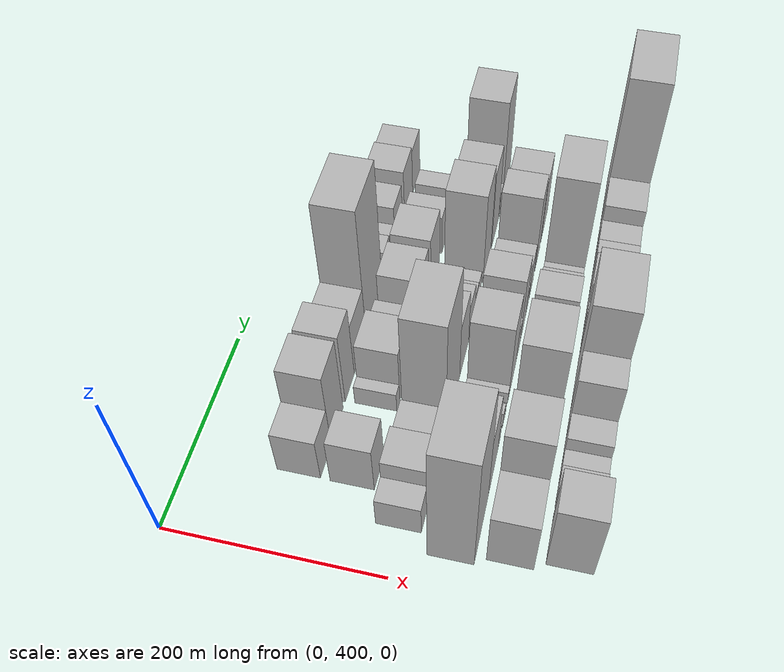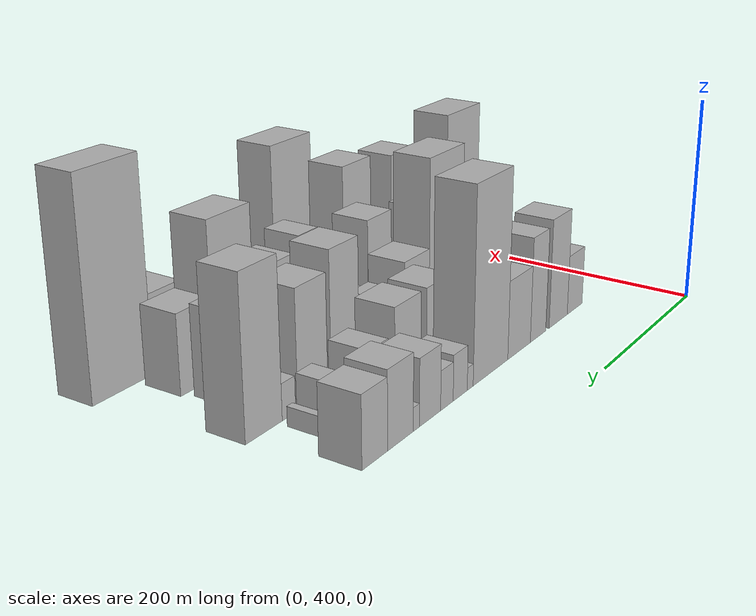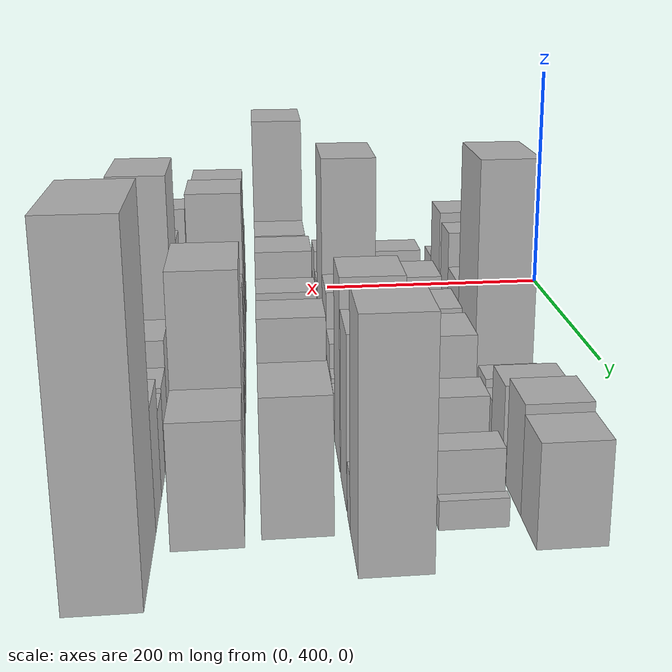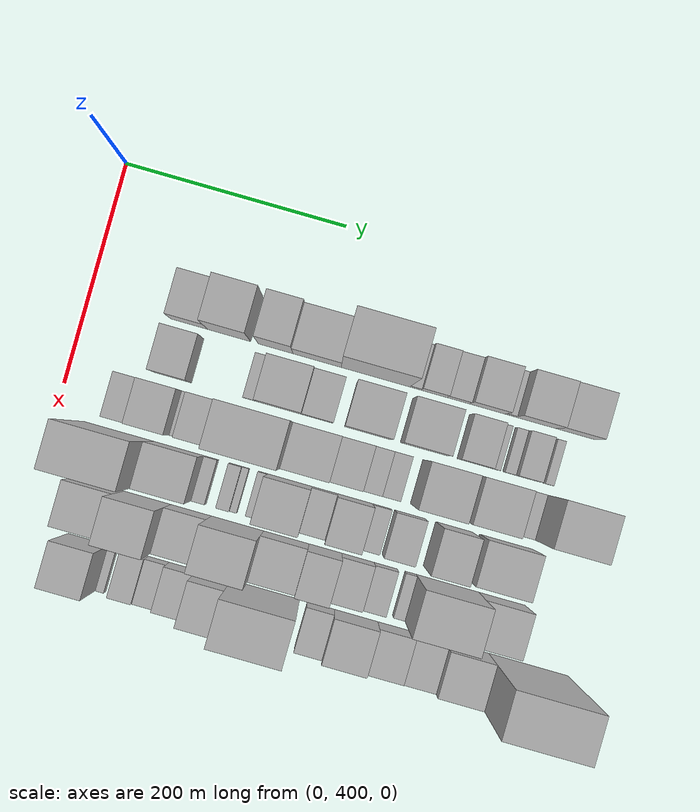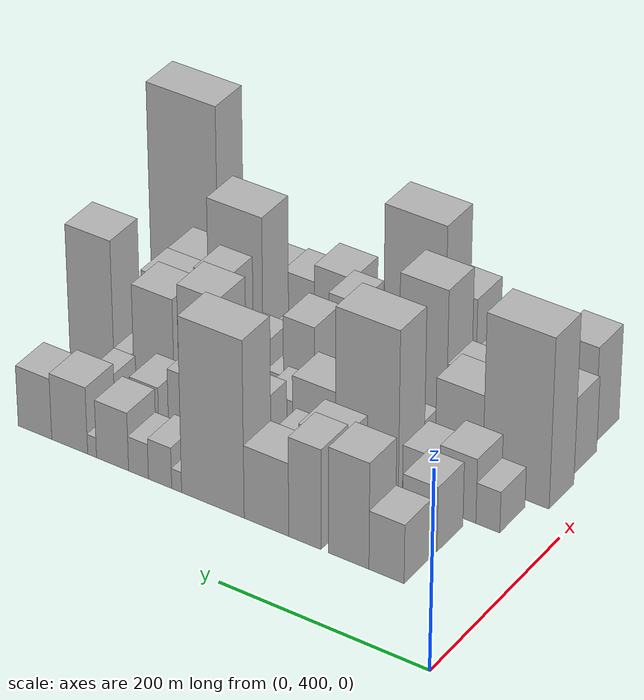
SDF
<sdf version="1.6">
 <world name="default">
  <model name="building_43">
   <static>1</static>
   <pose>100.0000 491.4651 0 0.000000 0.000000 0.000000</pose>
   <link name="link">
    <pose>0 0 30.00 0 0 0</pose>
    <collision name="collision"><geometry><box><size>40.0000 33.5811 60.0000</size></box></geometry></collision>
    <visual name="visual">
     <cast_shadows>0</cast_shadows>
     <geometry><box><size>40.0000 33.5811 60.0000</size></box></geometry>
     <material>
      <script>
       <uri>model://HANNAS_wall/materials/scripts</uri>
       <uri>model://HANNAS_wall/materials/textures</uri>
       <name>vrc/HANNAS_wall</name>
      </script>
     </material>
    </visual>
   </link>
  </model>
  <model name="building_44">
   <static>1</static>
   <pose>100.0000 527.8401 0 0.000000 0.000000 0.000000</pose>
   <link name="link">
    <pose>0 0 54.00 0 0 0</pose>
    <collision name="collision"><geometry><box><size>40.0000 39.1689 108.0000</size></box></geometry></collision>
    <visual name="visual">
     <cast_shadows>0</cast_shadows>
     <geometry><box><size>40.0000 39.1689 108.0000</size></box></geometry>
     <material>
      <script>
       <uri>model://HANNAS_wall/materials/scripts</uri>
       <uri>model://HANNAS_wall/materials/textures</uri>
       <name>vrc/HANNAS_wall</name>
      </script>
     </material>
    </visual>
   </link>
  </model>
  <model name="building_45">
   <static>1</static>
   <pose>100.0000 570.1736 0 0.000000 0.000000 0.000000</pose>
   <link name="link">
    <pose>0 0 51.00 0 0 0</pose>
    <collision name="collision"><geometry><box><size>40.0000 31.4981 102.0000</size></box></geometry></collision>
    <visual name="visual">
     <cast_shadows>0</cast_shadows>
     <geometry><box><size>40.0000 31.4981 102.0000</size></box></geometry>
     <material>
      <script>
       <uri>model://HANNAS_wall/materials/scripts</uri>
       <uri>model://HANNAS_wall/materials/textures</uri>
       <name>vrc/HANNAS_wall</name>
      </script>
     </material>
    </visual>
   </link>
  </model>
  <model name="building_46">
   <static>1</static>
   <pose>100.0000 607.7697 0 0.000000 0.000000 0.000000</pose>
   <link name="link">
    <pose>0 0 37.50 0 0 0</pose>
    <collision name="collision"><geometry><box><size>40.0000 43.6942 75.0000</size></box></geometry></collision>
    <visual name="visual">
     <cast_shadows>0</cast_shadows>
     <geometry><box><size>40.0000 43.6942 75.0000</size></box></geometry>
     <material>
      <script>
       <uri>model://HANNAS_wall/materials/scripts</uri>
       <uri>model://HANNAS_wall/materials/textures</uri>
       <name>vrc/HANNAS_wall</name>
      </script>
     </material>
    </visual>
   </link>
  </model>
  <model name="building_47">
   <static>1</static>
   <pose>100.0000 660.7658 0 0.000000 0.000000 0.000000</pose>
   <link name="link">
    <pose>0 0 90.00 0 0 0</pose>
    <collision name="collision"><geometry><box><size>40.0000 62.2980 180.0000</size></box></geometry></collision>
    <visual name="visual">
     <cast_shadows>0</cast_shadows>
     <geometry><box><size>40.0000 62.2980 180.0000</size></box></geometry>
     <material>
      <script>
       <uri>model://HANNAS_wall/materials/scripts</uri>
       <uri>model://HANNAS_wall/materials/textures</uri>
       <name>vrc/HANNAS_wall</name>
      </script>
     </material>
    </visual>
   </link>
  </model>
  <model name="building_48">
   <static>1</static>
   <pose>100.0000 696.9448 0 0.000000 0.000000 0.000000</pose>
   <link name="link">
    <pose>0 0 10.50 0 0 0</pose>
    <collision name="collision"><geometry><box><size>40.0000 10.0598 21.0000</size></box></geometry></collision>
    <visual name="visual">
     <cast_shadows>0</cast_shadows>
     <geometry><box><size>40.0000 10.0598 21.0000</size></box></geometry>
     <material>
      <script>
       <uri>model://HANNAS_wall/materials/scripts</uri>
       <uri>model://HANNAS_wall/materials/textures</uri>
       <name>vrc/HANNAS_wall</name>
      </script>
     </material>
    </visual>
   </link>
  </model>
  <model name="building_49">
   <static>1</static>
   <pose>100.0000 713.6967 0 0.000000 0.000000 0.000000</pose>
   <link name="link">
    <pose>0 0 21.00 0 0 0</pose>
    <collision name="collision"><geometry><box><size>40.0000 23.4441 42.0000</size></box></geometry></collision>
    <visual name="visual">
     <cast_shadows>0</cast_shadows>
     <geometry><box><size>40.0000 23.4441 42.0000</size></box></geometry>
     <material>
      <script>
       <uri>model://HANNAS_wall/materials/scripts</uri>
       <uri>model://HANNAS_wall/materials/textures</uri>
       <name>vrc/HANNAS_wall</name>
      </script>
     </material>
    </visual>
   </link>
  </model>
  <model name="building_50">
   <static>1</static>
   <pose>100.0000 735.4919 0 0.000000 0.000000 0.000000</pose>
   <link name="link">
    <pose>0 0 18.00 0 0 0</pose>
    <collision name="collision"><geometry><box><size>40.0000 20.1462 36.0000</size></box></geometry></collision>
    <visual name="visual">
     <cast_shadows>0</cast_shadows>
     <geometry><box><size>40.0000 20.1462 36.0000</size></box></geometry>
     <material>
      <script>
       <uri>model://HANNAS_wall/materials/scripts</uri>
       <uri>model://HANNAS_wall/materials/textures</uri>
       <name>vrc/HANNAS_wall</name>
      </script>
     </material>
    </visual>
   </link>
  </model>
  <model name="building_51">
   <static>1</static>
   <pose>100.0000 761.9363 0 0.000000 0.000000 0.000000</pose>
   <link name="link">
    <pose>0 0 30.00 0 0 0</pose>
    <collision name="collision"><geometry><box><size>40.0000 32.7426 60.0000</size></box></geometry></collision>
    <visual name="visual">
     <cast_shadows>0</cast_shadows>
     <geometry><box><size>40.0000 32.7426 60.0000</size></box></geometry>
     <material>
      <script>
       <uri>model://HANNAS_wall/materials/scripts</uri>
       <uri>model://HANNAS_wall/materials/textures</uri>
       <name>vrc/HANNAS_wall</name>
      </script>
     </material>
    </visual>
   </link>
  </model>
  <model name="building_52">
   <static>1</static>
   <pose>100.0000 782.8696 0 0.000000 0.000000 0.000000</pose>
   <link name="link">
    <pose>0 0 10.50 0 0 0</pose>
    <collision name="collision"><geometry><box><size>40.0000 9.1240 21.0000</size></box></geometry></collision>
    <visual name="visual">
     <cast_shadows>0</cast_shadows>
     <geometry><box><size>40.0000 9.1240 21.0000</size></box></geometry>
     <material>
      <script>
       <uri>model://HANNAS_wall/materials/scripts</uri>
       <uri>model://HANNAS_wall/materials/textures</uri>
       <name>vrc/HANNAS_wall</name>
      </script>
     </material>
    </visual>
   </link>
  </model>
  <model name="building_53">
   <static>1</static>
   <pose>100.0000 805.9386 0 0.000000 0.000000 0.000000</pose>
   <link name="link">
    <pose>0 0 34.50 0 0 0</pose>
    <collision name="collision"><geometry><box><size>40.0000 37.0140 69.0000</size></box></geometry></collision>
    <visual name="visual">
     <cast_shadows>0</cast_shadows>
     <geometry><box><size>40.0000 37.0140 69.0000</size></box></geometry>
     <material>
      <script>
       <uri>model://HANNAS_wall/materials/scripts</uri>
       <uri>model://HANNAS_wall/materials/textures</uri>
       <name>vrc/HANNAS_wall</name>
      </script>
     </material>
    </visual>
   </link>
  </model>
  <model name="building_54">
   <static>1</static>
   <pose>100.0000 841.8840 0 0.000000 0.000000 0.000000</pose>
   <link name="link">
    <pose>0 0 31.50 0 0 0</pose>
    <collision name="collision"><geometry><box><size>40.0000 34.8770 63.0000</size></box></geometry></collision>
    <visual name="visual">
     <cast_shadows>0</cast_shadows>
     <geometry><box><size>40.0000 34.8770 63.0000</size></box></geometry>
     <material>
      <script>
       <uri>model://HANNAS_wall/materials/scripts</uri>
       <uri>model://HANNAS_wall/materials/textures</uri>
       <name>vrc/HANNAS_wall</name>
      </script>
     </material>
    </visual>
   </link>
  </model>
  <model name="building_86">
   <static>1</static>
   <pose>149.0000 490.7361 0 0.000000 0.000000 0.000000</pose>
   <link name="link">
    <pose>0 0 33.00 0 0 0</pose>
    <collision name="collision"><geometry><box><size>40.0000 33.4193 66.0000</size></box></geometry></collision>
    <visual name="visual">
     <cast_shadows>0</cast_shadows>
     <geometry><box><size>40.0000 33.4193 66.0000</size></box></geometry>
     <material>
      <script>
       <uri>model://HANNAS_wall/materials/scripts</uri>
       <uri>model://HANNAS_wall/materials/textures</uri>
       <name>vrc/HANNAS_wall</name>
      </script>
     </material>
    </visual>
   </link>
  </model>
  <model name="building_87">
   <static>1</static>
   <pose>149.0000 561.1729 0 0.000000 0.000000 0.000000</pose>
   <link name="link">
    <pose>0 0 13.50 0 0 0</pose>
    <collision name="collision"><geometry><box><size>40.0000 11.8181 27.0000</size></box></geometry></collision>
    <visual name="visual">
     <cast_shadows>0</cast_shadows>
     <geometry><box><size>40.0000 11.8181 27.0000</size></box></geometry>
     <material>
      <script>
       <uri>model://HANNAS_wall/materials/scripts</uri>
       <uri>model://HANNAS_wall/materials/textures</uri>
       <name>vrc/HANNAS_wall</name>
      </script>
     </material>
    </visual>
   </link>
  </model>
  <model name="building_88">
   <static>1</static>
   <pose>149.0000 587.7290 0 0.000000 0.000000 0.000000</pose>
   <link name="link">
    <pose>0 0 37.50 0 0 0</pose>
    <collision name="collision"><geometry><box><size>40.0000 41.2941 75.0000</size></box></geometry></collision>
    <visual name="visual">
     <cast_shadows>0</cast_shadows>
     <geometry><box><size>40.0000 41.2941 75.0000</size></box></geometry>
     <material>
      <script>
       <uri>model://HANNAS_wall/materials/scripts</uri>
       <uri>model://HANNAS_wall/materials/textures</uri>
       <name>vrc/HANNAS_wall</name>
      </script>
     </material>
    </visual>
   </link>
  </model>
  <model name="building_89">
   <static>1</static>
   <pose>149.0000 622.4122 0 0.000000 0.000000 0.000000</pose>
   <link name="link">
    <pose>0 0 27.00 0 0 0</pose>
    <collision name="collision"><geometry><box><size>40.0000 28.0723 54.0000</size></box></geometry></collision>
    <visual name="visual">
     <cast_shadows>0</cast_shadows>
     <geometry><box><size>40.0000 28.0723 54.0000</size></box></geometry>
     <material>
      <script>
       <uri>model://HANNAS_wall/materials/scripts</uri>
       <uri>model://HANNAS_wall/materials/textures</uri>
       <name>vrc/HANNAS_wall</name>
      </script>
     </material>
    </visual>
   </link>
  </model>
  <model name="building_90">
   <static>1</static>
   <pose>149.0000 667.3184 0 0.000000 0.000000 0.000000</pose>
   <link name="link">
    <pose>0 0 39.00 0 0 0</pose>
    <collision name="collision"><geometry><box><size>40.0000 41.7401 78.0000</size></box></geometry></collision>
    <visual name="visual">
     <cast_shadows>0</cast_shadows>
     <geometry><box><size>40.0000 41.7401 78.0000</size></box></geometry>
     <material>
      <script>
       <uri>model://HANNAS_wall/materials/scripts</uri>
       <uri>model://HANNAS_wall/materials/textures</uri>
       <name>vrc/HANNAS_wall</name>
      </script>
     </material>
    </visual>
   </link>
  </model>
  <model name="building_91">
   <static>1</static>
   <pose>149.0000 717.9717 0 0.000000 0.000000 0.000000</pose>
   <link name="link">
    <pose>0 0 39.00 0 0 0</pose>
    <collision name="collision"><geometry><box><size>40.0000 41.5666 78.0000</size></box></geometry></collision>
    <visual name="visual">
     <cast_shadows>0</cast_shadows>
     <geometry><box><size>40.0000 41.5666 78.0000</size></box></geometry>
     <material>
      <script>
       <uri>model://HANNAS_wall/materials/scripts</uri>
       <uri>model://HANNAS_wall/materials/textures</uri>
       <name>vrc/HANNAS_wall</name>
      </script>
     </material>
    </visual>
   </link>
  </model>
  <model name="building_92">
   <static>1</static>
   <pose>149.0000 763.2390 0 0.000000 0.000000 0.000000</pose>
   <link name="link">
    <pose>0 0 27.00 0 0 0</pose>
    <collision name="collision"><geometry><box><size>40.0000 28.9679 54.0000</size></box></geometry></collision>
    <visual name="visual">
     <cast_shadows>0</cast_shadows>
     <geometry><box><size>40.0000 28.9679 54.0000</size></box></geometry>
     <material>
      <script>
       <uri>model://HANNAS_wall/materials/scripts</uri>
       <uri>model://HANNAS_wall/materials/textures</uri>
       <name>vrc/HANNAS_wall</name>
      </script>
     </material>
    </visual>
   </link>
  </model>
  <model name="building_93">
   <static>1</static>
   <pose>149.0000 782.0076 0 0.000000 0.000000 0.000000</pose>
   <link name="link">
    <pose>0 0 10.50 0 0 0</pose>
    <collision name="collision"><geometry><box><size>40.0000 8.5693 21.0000</size></box></geometry></collision>
    <visual name="visual">
     <cast_shadows>0</cast_shadows>
     <geometry><box><size>40.0000 8.5693 21.0000</size></box></geometry>
     <material>
      <script>
       <uri>model://HANNAS_wall/materials/scripts</uri>
       <uri>model://HANNAS_wall/materials/textures</uri>
       <name>vrc/HANNAS_wall</name>
      </script>
     </material>
    </visual>
   </link>
  </model>
  <model name="building_94">
   <static>1</static>
   <pose>149.0000 795.2549 0 0.000000 0.000000 0.000000</pose>
   <link name="link">
    <pose>0 0 10.50 0 0 0</pose>
    <collision name="collision"><geometry><box><size>40.0000 9.9253 21.0000</size></box></geometry></collision>
    <visual name="visual">
     <cast_shadows>0</cast_shadows>
     <geometry><box><size>40.0000 9.9253 21.0000</size></box></geometry>
     <material>
      <script>
       <uri>model://HANNAS_wall/materials/scripts</uri>
       <uri>model://HANNAS_wall/materials/textures</uri>
       <name>vrc/HANNAS_wall</name>
      </script>
     </material>
    </visual>
   </link>
  </model>
  <model name="building_95">
   <static>1</static>
   <pose>149.0000 811.0307 0 0.000000 0.000000 0.000000</pose>
   <link name="link">
    <pose>0 0 21.00 0 0 0</pose>
    <collision name="collision"><geometry><box><size>40.0000 21.6262 42.0000</size></box></geometry></collision>
    <visual name="visual">
     <cast_shadows>0</cast_shadows>
     <geometry><box><size>40.0000 21.6262 42.0000</size></box></geometry>
     <material>
      <script>
       <uri>model://HANNAS_wall/materials/scripts</uri>
       <uri>model://HANNAS_wall/materials/textures</uri>
       <name>vrc/HANNAS_wall</name>
      </script>
     </material>
    </visual>
   </link>
  </model>
  <model name="building_96">
   <static>1</static>
   <pose>149.0000 830.6924 0 0.000000 0.000000 0.000000</pose>
   <link name="link">
    <pose>0 0 9.00 0 0 0</pose>
    <collision name="collision"><geometry><box><size>40.0000 7.6972 18.0000</size></box></geometry></collision>
    <visual name="visual">
     <cast_shadows>0</cast_shadows>
     <geometry><box><size>40.0000 7.6972 18.0000</size></box></geometry>
     <material>
      <script>
       <uri>model://HANNAS_wall/materials/scripts</uri>
       <uri>model://HANNAS_wall/materials/textures</uri>
       <name>vrc/HANNAS_wall</name>
      </script>
     </material>
    </visual>
   </link>
  </model>
  <model name="building_135">
   <static>1</static>
   <pose>198.0000 455.6032 0 0.000000 0.000000 0.000000</pose>
   <link name="link">
    <pose>0 0 21.00 0 0 0</pose>
    <collision name="collision"><geometry><box><size>40.0000 22.8339 42.0000</size></box></geometry></collision>
    <visual name="visual">
     <cast_shadows>0</cast_shadows>
     <geometry><box><size>40.0000 22.8339 42.0000</size></box></geometry>
     <material>
      <script>
       <uri>model://HANNAS_wall/materials/scripts</uri>
       <uri>model://HANNAS_wall/materials/textures</uri>
       <name>vrc/HANNAS_wall</name>
      </script>
     </material>
    </visual>
   </link>
  </model>
  <model name="building_136">
   <static>1</static>
   <pose>198.0000 484.7252 0 0.000000 0.000000 0.000000</pose>
   <link name="link">
    <pose>0 0 33.00 0 0 0</pose>
    <collision name="collision"><geometry><box><size>40.0000 35.4102 66.0000</size></box></geometry></collision>
    <visual name="visual">
     <cast_shadows>0</cast_shadows>
     <geometry><box><size>40.0000 35.4102 66.0000</size></box></geometry>
     <material>
      <script>
       <uri>model://HANNAS_wall/materials/scripts</uri>
       <uri>model://HANNAS_wall/materials/textures</uri>
       <name>vrc/HANNAS_wall</name>
      </script>
     </material>
    </visual>
   </link>
  </model>
  <model name="building_137">
   <static>1</static>
   <pose>198.0000 505.6870 0 0.000000 0.000000 0.000000</pose>
   <link name="link">
    <pose>0 0 7.50 0 0 0</pose>
    <collision name="collision"><geometry><box><size>40.0000 6.5134 15.0000</size></box></geometry></collision>
    <visual name="visual">
     <cast_shadows>0</cast_shadows>
     <geometry><box><size>40.0000 6.5134 15.0000</size></box></geometry>
     <material>
      <script>
       <uri>model://HANNAS_wall/materials/scripts</uri>
       <uri>model://HANNAS_wall/materials/textures</uri>
       <name>vrc/HANNAS_wall</name>
      </script>
     </material>
    </visual>
   </link>
  </model>
  <model name="building_138">
   <static>1</static>
   <pose>198.0000 523.5213 0 0.000000 0.000000 0.000000</pose>
   <link name="link">
    <pose>0 0 25.50 0 0 0</pose>
    <collision name="collision"><geometry><box><size>40.0000 29.1552 51.0000</size></box></geometry></collision>
    <visual name="visual">
     <cast_shadows>0</cast_shadows>
     <geometry><box><size>40.0000 29.1552 51.0000</size></box></geometry>
     <material>
      <script>
       <uri>model://HANNAS_wall/materials/scripts</uri>
       <uri>model://HANNAS_wall/materials/textures</uri>
       <name>vrc/HANNAS_wall</name>
      </script>
     </material>
    </visual>
   </link>
  </model>
  <model name="building_139">
   <static>1</static>
   <pose>198.0000 573.0667 0 0.000000 0.000000 0.000000</pose>
   <link name="link">
    <pose>0 0 82.50 0 0 0</pose>
    <collision name="collision"><geometry><box><size>40.0000 61.9356 165.0000</size></box></geometry></collision>
    <visual name="visual">
     <cast_shadows>0</cast_shadows>
     <geometry><box><size>40.0000 61.9356 165.0000</size></box></geometry>
     <material>
      <script>
       <uri>model://HANNAS_wall/materials/scripts</uri>
       <uri>model://HANNAS_wall/materials/textures</uri>
       <name>vrc/HANNAS_wall</name>
      </script>
     </material>
    </visual>
   </link>
  </model>
  <model name="building_140">
   <static>1</static>
   <pose>198.0000 625.4082 0 0.000000 0.000000 0.000000</pose>
   <link name="link">
    <pose>0 0 39.00 0 0 0</pose>
    <collision name="collision"><geometry><box><size>40.0000 42.7475 78.0000</size></box></geometry></collision>
    <visual name="visual">
     <cast_shadows>0</cast_shadows>
     <geometry><box><size>40.0000 42.7475 78.0000</size></box></geometry>
     <material>
      <script>
       <uri>model://HANNAS_wall/materials/scripts</uri>
       <uri>model://HANNAS_wall/materials/textures</uri>
       <name>vrc/HANNAS_wall</name>
      </script>
     </material>
    </visual>
   </link>
  </model>
  <model name="building_141">
   <static>1</static>
   <pose>198.0000 661.6534 0 0.000000 0.000000 0.000000</pose>
   <link name="link">
    <pose>0 0 25.50 0 0 0</pose>
    <collision name="collision"><geometry><box><size>40.0000 29.7428 51.0000</size></box></geometry></collision>
    <visual name="visual">
     <cast_shadows>0</cast_shadows>
     <geometry><box><size>40.0000 29.7428 51.0000</size></box></geometry>
     <material>
      <script>
       <uri>model://HANNAS_wall/materials/scripts</uri>
       <uri>model://HANNAS_wall/materials/textures</uri>
       <name>vrc/HANNAS_wall</name>
      </script>
     </material>
    </visual>
   </link>
  </model>
  <model name="building_142">
   <static>1</static>
   <pose>198.0000 685.2212 0 0.000000 0.000000 0.000000</pose>
   <link name="link">
    <pose>0 0 16.50 0 0 0</pose>
    <collision name="collision"><geometry><box><size>40.0000 17.3928 33.0000</size></box></geometry></collision>
    <visual name="visual">
     <cast_shadows>0</cast_shadows>
     <geometry><box><size>40.0000 17.3928 33.0000</size></box></geometry>
     <material>
      <script>
       <uri>model://HANNAS_wall/materials/scripts</uri>
       <uri>model://HANNAS_wall/materials/textures</uri>
       <name>vrc/HANNAS_wall</name>
      </script>
     </material>
    </visual>
   </link>
  </model>
  <model name="building_143">
   <static>1</static>
   <pose>198.0000 702.1070 0 0.000000 0.000000 0.000000</pose>
   <link name="link">
    <pose>0 0 15.00 0 0 0</pose>
    <collision name="collision"><geometry><box><size>40.0000 16.3787 30.0000</size></box></geometry></collision>
    <visual name="visual">
     <cast_shadows>0</cast_shadows>
     <geometry><box><size>40.0000 16.3787 30.0000</size></box></geometry>
     <material>
      <script>
       <uri>model://HANNAS_wall/materials/scripts</uri>
       <uri>model://HANNAS_wall/materials/textures</uri>
       <name>vrc/HANNAS_wall</name>
      </script>
     </material>
    </visual>
   </link>
  </model>
  <model name="building_144">
   <static>1</static>
   <pose>198.0000 741.1297 0 0.000000 0.000000 0.000000</pose>
   <link name="link">
    <pose>0 0 63.00 0 0 0</pose>
    <collision name="collision"><geometry><box><size>40.0000 41.6668 126.0000</size></box></geometry></collision>
    <visual name="visual">
     <cast_shadows>0</cast_shadows>
     <geometry><box><size>40.0000 41.6668 126.0000</size></box></geometry>
     <material>
      <script>
       <uri>model://HANNAS_wall/materials/scripts</uri>
       <uri>model://HANNAS_wall/materials/textures</uri>
       <name>vrc/HANNAS_wall</name>
      </script>
     </material>
    </visual>
   </link>
  </model>
  <model name="building_145">
   <static>1</static>
   <pose>198.0000 787.8426 0 0.000000 0.000000 0.000000</pose>
   <link name="link">
    <pose>0 0 54.00 0 0 0</pose>
    <collision name="collision"><geometry><box><size>40.0000 41.7590 108.0000</size></box></geometry></collision>
    <visual name="visual">
     <cast_shadows>0</cast_shadows>
     <geometry><box><size>40.0000 41.7590 108.0000</size></box></geometry>
     <material>
      <script>
       <uri>model://HANNAS_wall/materials/scripts</uri>
       <uri>model://HANNAS_wall/materials/textures</uri>
       <name>vrc/HANNAS_wall</name>
      </script>
     </material>
    </visual>
   </link>
  </model>
  <model name="building_146">
   <static>1</static>
   <pose>198.0000 820.5951 0 0.000000 0.000000 0.000000</pose>
   <link name="link">
    <pose>0 0 16.50 0 0 0</pose>
    <collision name="collision"><geometry><box><size>40.0000 17.7459 33.0000</size></box></geometry></collision>
    <visual name="visual">
     <cast_shadows>0</cast_shadows>
     <geometry><box><size>40.0000 17.7459 33.0000</size></box></geometry>
     <material>
      <script>
       <uri>model://HANNAS_wall/materials/scripts</uri>
       <uri>model://HANNAS_wall/materials/textures</uri>
       <name>vrc/HANNAS_wall</name>
      </script>
     </material>
    </visual>
   </link>
  </model>
  <model name="building_147">
   <static>1</static>
   <pose>198.0000 852.7118 0 0.000000 0.000000 0.000000</pose>
   <link name="link">
    <pose>0 0 72.00 0 0 0</pose>
    <collision name="collision"><geometry><box><size>40.0000 46.4877 144.0000</size></box></geometry></collision>
    <visual name="visual">
     <cast_shadows>0</cast_shadows>
     <geometry><box><size>40.0000 46.4877 144.0000</size></box></geometry>
     <material>
      <script>
       <uri>model://HANNAS_wall/materials/scripts</uri>
       <uri>model://HANNAS_wall/materials/textures</uri>
       <name>vrc/HANNAS_wall</name>
      </script>
     </material>
    </visual>
   </link>
  </model>
  <model name="building_182">
   <static>1</static>
   <pose>247.0000 458.5554 0 0.000000 0.000000 0.000000</pose>
   <link name="link">
    <pose>0 0 87.00 0 0 0</pose>
    <collision name="collision"><geometry><box><size>40.0000 64.3074 174.0000</size></box></geometry></collision>
    <visual name="visual">
     <cast_shadows>0</cast_shadows>
     <geometry><box><size>40.0000 64.3074 174.0000</size></box></geometry>
     <material>
      <script>
       <uri>model://HANNAS_wall/materials/scripts</uri>
       <uri>model://HANNAS_wall/materials/textures</uri>
       <name>vrc/HANNAS_wall</name>
      </script>
     </material>
    </visual>
   </link>
  </model>
  <model name="building_183">
   <static>1</static>
   <pose>247.0000 513.8009 0 0.000000 0.000000 0.000000</pose>
   <link name="link">
    <pose>0 0 45.00 0 0 0</pose>
    <collision name="collision"><geometry><box><size>40.0000 46.1836 90.0000</size></box></geometry></collision>
    <visual name="visual">
     <cast_shadows>0</cast_shadows>
     <geometry><box><size>40.0000 46.1836 90.0000</size></box></geometry>
     <material>
      <script>
       <uri>model://HANNAS_wall/materials/scripts</uri>
       <uri>model://HANNAS_wall/materials/textures</uri>
       <name>vrc/HANNAS_wall</name>
      </script>
     </material>
    </visual>
   </link>
  </model>
  <model name="building_184">
   <static>1</static>
   <pose>247.0000 542.8777 0 0.000000 0.000000 0.000000</pose>
   <link name="link">
    <pose>0 0 12.00 0 0 0</pose>
    <collision name="collision"><geometry><box><size>40.0000 11.9698 24.0000</size></box></geometry></collision>
    <visual name="visual">
     <cast_shadows>0</cast_shadows>
     <geometry><box><size>40.0000 11.9698 24.0000</size></box></geometry>
     <material>
      <script>
       <uri>model://HANNAS_wall/materials/scripts</uri>
       <uri>model://HANNAS_wall/materials/textures</uri>
       <name>vrc/HANNAS_wall</name>
      </script>
     </material>
    </visual>
   </link>
  </model>
  <model name="building_185">
   <static>1</static>
   <pose>247.0000 564.8001 0 0.000000 0.000000 0.000000</pose>
   <link name="link">
    <pose>0 0 12.00 0 0 0</pose>
    <collision name="collision"><geometry><box><size>40.0000 11.8750 24.0000</size></box></geometry></collision>
    <visual name="visual">
     <cast_shadows>0</cast_shadows>
     <geometry><box><size>40.0000 11.8750 24.0000</size></box></geometry>
     <material>
      <script>
       <uri>model://HANNAS_wall/materials/scripts</uri>
       <uri>model://HANNAS_wall/materials/textures</uri>
       <name>vrc/HANNAS_wall</name>
      </script>
     </material>
    </visual>
   </link>
  </model>
  <model name="building_186">
   <static>1</static>
   <pose>247.0000 573.8648 0 0.000000 0.000000 0.000000</pose>
   <link name="link">
    <pose>0 0 7.50 0 0 0</pose>
    <collision name="collision"><geometry><box><size>40.0000 6.2544 15.0000</size></box></geometry></collision>
    <visual name="visual">
     <cast_shadows>0</cast_shadows>
     <geometry><box><size>40.0000 6.2544 15.0000</size></box></geometry>
     <material>
      <script>
       <uri>model://HANNAS_wall/materials/scripts</uri>
       <uri>model://HANNAS_wall/materials/textures</uri>
       <name>vrc/HANNAS_wall</name>
      </script>
     </material>
    </visual>
   </link>
  </model>
  <model name="building_187">
   <static>1</static>
   <pose>247.0000 589.3722 0 0.000000 0.000000 0.000000</pose>
   <link name="link">
    <pose>0 0 9.00 0 0 0</pose>
    <collision name="collision"><geometry><box><size>40.0000 8.7603 18.0000</size></box></geometry></collision>
    <visual name="visual">
     <cast_shadows>0</cast_shadows>
     <geometry><box><size>40.0000 8.7603 18.0000</size></box></geometry>
     <material>
      <script>
       <uri>model://HANNAS_wall/materials/scripts</uri>
       <uri>model://HANNAS_wall/materials/textures</uri>
       <name>vrc/HANNAS_wall</name>
      </script>
     </material>
    </visual>
   </link>
  </model>
  <model name="building_188">
   <static>1</static>
   <pose>247.0000 613.8163 0 0.000000 0.000000 0.000000</pose>
   <link name="link">
    <pose>0 0 52.50 0 0 0</pose>
    <collision name="collision"><geometry><box><size>40.0000 40.1279 105.0000</size></box></geometry></collision>
    <visual name="visual">
     <cast_shadows>0</cast_shadows>
     <geometry><box><size>40.0000 40.1279 105.0000</size></box></geometry>
     <material>
      <script>
       <uri>model://HANNAS_wall/materials/scripts</uri>
       <uri>model://HANNAS_wall/materials/textures</uri>
       <name>vrc/HANNAS_wall</name>
      </script>
     </material>
    </visual>
   </link>
  </model>
  <model name="building_189">
   <static>1</static>
   <pose>247.0000 645.3020 0 0.000000 0.000000 0.000000</pose>
   <link name="link">
    <pose>0 0 19.50 0 0 0</pose>
    <collision name="collision"><geometry><box><size>40.0000 22.8436 39.0000</size></box></geometry></collision>
    <visual name="visual">
     <cast_shadows>0</cast_shadows>
     <geometry><box><size>40.0000 22.8436 39.0000</size></box></geometry>
     <material>
      <script>
       <uri>model://HANNAS_wall/materials/scripts</uri>
       <uri>model://HANNAS_wall/materials/textures</uri>
       <name>vrc/HANNAS_wall</name>
      </script>
     </material>
    </visual>
   </link>
  </model>
  <model name="building_190">
   <static>1</static>
   <pose>247.0000 672.5135 0 0.000000 0.000000 0.000000</pose>
   <link name="link">
    <pose>0 0 46.50 0 0 0</pose>
    <collision name="collision"><geometry><box><size>40.0000 31.5794 93.0000</size></box></geometry></collision>
    <visual name="visual">
     <cast_shadows>0</cast_shadows>
     <geometry><box><size>40.0000 31.5794 93.0000</size></box></geometry>
     <material>
      <script>
       <uri>model://HANNAS_wall/materials/scripts</uri>
       <uri>model://HANNAS_wall/materials/textures</uri>
       <name>vrc/HANNAS_wall</name>
      </script>
     </material>
    </visual>
   </link>
  </model>
  <model name="building_191">
   <static>1</static>
   <pose>247.0000 696.9314 0 0.000000 0.000000 0.000000</pose>
   <link name="link">
    <pose>0 0 15.00 0 0 0</pose>
    <collision name="collision"><geometry><box><size>40.0000 17.2564 30.0000</size></box></geometry></collision>
    <visual name="visual">
     <cast_shadows>0</cast_shadows>
     <geometry><box><size>40.0000 17.2564 30.0000</size></box></geometry>
     <material>
      <script>
       <uri>model://HANNAS_wall/materials/scripts</uri>
       <uri>model://HANNAS_wall/materials/textures</uri>
       <name>vrc/HANNAS_wall</name>
      </script>
     </material>
    </visual>
   </link>
  </model>
  <model name="building_192">
   <static>1</static>
   <pose>247.0000 722.2515 0 0.000000 0.000000 0.000000</pose>
   <link name="link">
    <pose>0 0 27.00 0 0 0</pose>
    <collision name="collision"><geometry><box><size>40.0000 27.3838 54.0000</size></box></geometry></collision>
    <visual name="visual">
     <cast_shadows>0</cast_shadows>
     <geometry><box><size>40.0000 27.3838 54.0000</size></box></geometry>
     <material>
      <script>
       <uri>model://HANNAS_wall/materials/scripts</uri>
       <uri>model://HANNAS_wall/materials/textures</uri>
       <name>vrc/HANNAS_wall</name>
      </script>
     </material>
    </visual>
   </link>
  </model>
  <model name="building_193">
   <static>1</static>
   <pose>247.0000 762.4050 0 0.000000 0.000000 0.000000</pose>
   <link name="link">
    <pose>0 0 54.00 0 0 0</pose>
    <collision name="collision"><geometry><box><size>40.0000 32.9233 108.0000</size></box></geometry></collision>
    <visual name="visual">
     <cast_shadows>0</cast_shadows>
     <geometry><box><size>40.0000 32.9233 108.0000</size></box></geometry>
     <material>
      <script>
       <uri>model://HANNAS_wall/materials/scripts</uri>
       <uri>model://HANNAS_wall/materials/textures</uri>
       <name>vrc/HANNAS_wall</name>
      </script>
     </material>
    </visual>
   </link>
  </model>
  <model name="building_194">
   <static>1</static>
   <pose>247.0000 810.0331 0 0.000000 0.000000 0.000000</pose>
   <link name="link">
    <pose>0 0 42.00 0 0 0</pose>
    <collision name="collision"><geometry><box><size>40.0000 48.3327 84.0000</size></box></geometry></collision>
    <visual name="visual">
     <cast_shadows>0</cast_shadows>
     <geometry><box><size>40.0000 48.3327 84.0000</size></box></geometry>
     <material>
      <script>
       <uri>model://HANNAS_wall/materials/scripts</uri>
       <uri>model://HANNAS_wall/materials/textures</uri>
       <name>vrc/HANNAS_wall</name>
      </script>
     </material>
    </visual>
   </link>
  </model>
  <model name="building_229">
   <static>1</static>
   <pose>296.0000 454.8022 0 0.000000 0.000000 0.000000</pose>
   <link name="link">
    <pose>0 0 39.00 0 0 0</pose>
    <collision name="collision"><geometry><box><size>40.0000 43.5747 78.0000</size></box></geometry></collision>
    <visual name="visual">
     <cast_shadows>0</cast_shadows>
     <geometry><box><size>40.0000 43.5747 78.0000</size></box></geometry>
     <material>
      <script>
       <uri>model://HANNAS_wall/materials/scripts</uri>
       <uri>model://HANNAS_wall/materials/textures</uri>
       <name>vrc/HANNAS_wall</name>
      </script>
     </material>
    </visual>
   </link>
  </model>
  <model name="building_230">
   <static>1</static>
   <pose>296.0000 497.9890 0 0.000000 0.000000 0.000000</pose>
   <link name="link">
    <pose>0 0 66.00 0 0 0</pose>
    <collision name="collision"><geometry><box><size>40.0000 42.7989 132.0000</size></box></geometry></collision>
    <visual name="visual">
     <cast_shadows>0</cast_shadows>
     <geometry><box><size>40.0000 42.7989 132.0000</size></box></geometry>
     <material>
      <script>
       <uri>model://HANNAS_wall/materials/scripts</uri>
       <uri>model://HANNAS_wall/materials/textures</uri>
       <name>vrc/HANNAS_wall</name>
      </script>
     </material>
    </visual>
   </link>
  </model>
  <model name="building_231">
   <static>1</static>
   <pose>296.0000 537.8273 0 0.000000 0.000000 0.000000</pose>
   <link name="link">
    <pose>0 0 33.00 0 0 0</pose>
    <collision name="collision"><geometry><box><size>40.0000 36.8778 66.0000</size></box></geometry></collision>
    <visual name="visual">
     <cast_shadows>0</cast_shadows>
     <geometry><box><size>40.0000 36.8778 66.0000</size></box></geometry>
     <material>
      <script>
       <uri>model://HANNAS_wall/materials/scripts</uri>
       <uri>model://HANNAS_wall/materials/textures</uri>
       <name>vrc/HANNAS_wall</name>
      </script>
     </material>
    </visual>
   </link>
  </model>
  <model name="building_232">
   <static>1</static>
   <pose>296.0000 579.9804 0 0.000000 0.000000 0.000000</pose>
   <link name="link">
    <pose>0 0 70.50 0 0 0</pose>
    <collision name="collision"><geometry><box><size>40.0000 47.4284 141.0000</size></box></geometry></collision>
    <visual name="visual">
     <cast_shadows>0</cast_shadows>
     <geometry><box><size>40.0000 47.4284 141.0000</size></box></geometry>
     <material>
      <script>
       <uri>model://HANNAS_wall/materials/scripts</uri>
       <uri>model://HANNAS_wall/materials/textures</uri>
       <name>vrc/HANNAS_wall</name>
      </script>
     </material>
    </visual>
   </link>
  </model>
  <model name="building_233">
   <static>1</static>
   <pose>296.0000 624.2475 0 0.000000 0.000000 0.000000</pose>
   <link name="link">
    <pose>0 0 36.00 0 0 0</pose>
    <collision name="collision"><geometry><box><size>40.0000 41.1059 72.0000</size></box></geometry></collision>
    <visual name="visual">
     <cast_shadows>0</cast_shadows>
     <geometry><box><size>40.0000 41.1059 72.0000</size></box></geometry>
     <material>
      <script>
       <uri>model://HANNAS_wall/materials/scripts</uri>
       <uri>model://HANNAS_wall/materials/textures</uri>
       <name>vrc/HANNAS_wall</name>
      </script>
     </material>
    </visual>
   </link>
  </model>
  <model name="building_234">
   <static>1</static>
   <pose>296.0000 659.6930 0 0.000000 0.000000 0.000000</pose>
   <link name="link">
    <pose>0 0 46.50 0 0 0</pose>
    <collision name="collision"><geometry><box><size>40.0000 29.7851 93.0000</size></box></geometry></collision>
    <visual name="visual">
     <cast_shadows>0</cast_shadows>
     <geometry><box><size>40.0000 29.7851 93.0000</size></box></geometry>
     <material>
      <script>
       <uri>model://HANNAS_wall/materials/scripts</uri>
       <uri>model://HANNAS_wall/materials/textures</uri>
       <name>vrc/HANNAS_wall</name>
      </script>
     </material>
    </visual>
   </link>
  </model>
  <model name="building_235">
   <static>1</static>
   <pose>296.0000 689.2675 0 0.000000 0.000000 0.000000</pose>
   <link name="link">
    <pose>0 0 25.50 0 0 0</pose>
    <collision name="collision"><geometry><box><size>40.0000 29.3638 51.0000</size></box></geometry></collision>
    <visual name="visual">
     <cast_shadows>0</cast_shadows>
     <geometry><box><size>40.0000 29.3638 51.0000</size></box></geometry>
     <material>
      <script>
       <uri>model://HANNAS_wall/materials/scripts</uri>
       <uri>model://HANNAS_wall/materials/textures</uri>
       <name>vrc/HANNAS_wall</name>
      </script>
     </material>
    </visual>
   </link>
  </model>
  <model name="building_236">
   <static>1</static>
   <pose>296.0000 714.4704 0 0.000000 0.000000 0.000000</pose>
   <link name="link">
    <pose>0 0 18.00 0 0 0</pose>
    <collision name="collision"><geometry><box><size>40.0000 21.0419 36.0000</size></box></geometry></collision>
    <visual name="visual">
     <cast_shadows>0</cast_shadows>
     <geometry><box><size>40.0000 21.0419 36.0000</size></box></geometry>
     <material>
      <script>
       <uri>model://HANNAS_wall/materials/scripts</uri>
       <uri>model://HANNAS_wall/materials/textures</uri>
       <name>vrc/HANNAS_wall</name>
      </script>
     </material>
    </visual>
   </link>
  </model>
  <model name="building_237">
   <static>1</static>
   <pose>296.0000 737.0585 0 0.000000 0.000000 0.000000</pose>
   <link name="link">
    <pose>0 0 12.00 0 0 0</pose>
    <collision name="collision"><geometry><box><size>40.0000 10.1344 24.0000</size></box></geometry></collision>
    <visual name="visual">
     <cast_shadows>0</cast_shadows>
     <geometry><box><size>40.0000 10.1344 24.0000</size></box></geometry>
     <material>
      <script>
       <uri>model://HANNAS_wall/materials/scripts</uri>
       <uri>model://HANNAS_wall/materials/textures</uri>
       <name>vrc/HANNAS_wall</name>
      </script>
     </material>
    </visual>
   </link>
  </model>
  <model name="building_238">
   <static>1</static>
   <pose>296.0000 770.3159 0 0.000000 0.000000 0.000000</pose>
   <link name="link">
    <pose>0 0 72.00 0 0 0</pose>
    <collision name="collision"><geometry><box><size>40.0000 56.3804 144.0000</size></box></geometry></collision>
    <visual name="visual">
     <cast_shadows>0</cast_shadows>
     <geometry><box><size>40.0000 56.3804 144.0000</size></box></geometry>
     <material>
      <script>
       <uri>model://HANNAS_wall/materials/scripts</uri>
       <uri>model://HANNAS_wall/materials/textures</uri>
       <name>vrc/HANNAS_wall</name>
      </script>
     </material>
    </visual>
   </link>
  </model>
  <model name="building_239">
   <static>1</static>
   <pose>296.0000 819.7992 0 0.000000 0.000000 0.000000</pose>
   <link name="link">
    <pose>0 0 37.50 0 0 0</pose>
    <collision name="collision"><geometry><box><size>40.0000 42.5861 75.0000</size></box></geometry></collision>
    <visual name="visual">
     <cast_shadows>0</cast_shadows>
     <geometry><box><size>40.0000 42.5861 75.0000</size></box></geometry>
     <material>
      <script>
       <uri>model://HANNAS_wall/materials/scripts</uri>
       <uri>model://HANNAS_wall/materials/textures</uri>
       <name>vrc/HANNAS_wall</name>
      </script>
     </material>
    </visual>
   </link>
  </model>
  <model name="building_278">
   <static>1</static>
   <pose>345.0000 458.8889 0 0.000000 0.000000 0.000000</pose>
   <link name="link">
    <pose>0 0 49.50 0 0 0</pose>
    <collision name="collision"><geometry><box><size>40.0000 38.1987 99.0000</size></box></geometry></collision>
    <visual name="visual">
     <cast_shadows>0</cast_shadows>
     <geometry><box><size>40.0000 38.1987 99.0000</size></box></geometry>
     <material>
      <script>
       <uri>model://HANNAS_wall/materials/scripts</uri>
       <uri>model://HANNAS_wall/materials/textures</uri>
       <name>vrc/HANNAS_wall</name>
      </script>
     </material>
    </visual>
   </link>
  </model>
  <model name="building_279">
   <static>1</static>
   <pose>345.0000 481.6784 0 0.000000 0.000000 0.000000</pose>
   <link name="link">
    <pose>0 0 7.50 0 0 0</pose>
    <collision name="collision"><geometry><box><size>40.0000 7.3803 15.0000</size></box></geometry></collision>
    <visual name="visual">
     <cast_shadows>0</cast_shadows>
     <geometry><box><size>40.0000 7.3803 15.0000</size></box></geometry>
     <material>
      <script>
       <uri>model://HANNAS_wall/materials/scripts</uri>
       <uri>model://HANNAS_wall/materials/textures</uri>
       <name>vrc/HANNAS_wall</name>
      </script>
     </material>
    </visual>
   </link>
  </model>
  <model name="building_280">
   <static>1</static>
   <pose>345.0000 502.1620 0 0.000000 0.000000 0.000000</pose>
   <link name="link">
    <pose>0 0 19.50 0 0 0</pose>
    <collision name="collision"><geometry><box><size>40.0000 21.5867 39.0000</size></box></geometry></collision>
    <visual name="visual">
     <cast_shadows>0</cast_shadows>
     <geometry><box><size>40.0000 21.5867 39.0000</size></box></geometry>
     <material>
      <script>
       <uri>model://HANNAS_wall/materials/scripts</uri>
       <uri>model://HANNAS_wall/materials/textures</uri>
       <name>vrc/HANNAS_wall</name>
      </script>
     </material>
    </visual>
   </link>
  </model>
  <model name="building_281">
   <static>1</static>
   <pose>345.0000 522.4015 0 0.000000 0.000000 0.000000</pose>
   <link name="link">
    <pose>0 0 16.50 0 0 0</pose>
    <collision name="collision"><geometry><box><size>40.0000 18.8924 33.0000</size></box></geometry></collision>
    <visual name="visual">
     <cast_shadows>0</cast_shadows>
     <geometry><box><size>40.0000 18.8924 33.0000</size></box></geometry>
     <material>
      <script>
       <uri>model://HANNAS_wall/materials/scripts</uri>
       <uri>model://HANNAS_wall/materials/textures</uri>
       <name>vrc/HANNAS_wall</name>
      </script>
     </material>
    </visual>
   </link>
  </model>
  <model name="building_282">
   <static>1</static>
   <pose>345.0000 544.6863 0 0.000000 0.000000 0.000000</pose>
   <link name="link">
    <pose>0 0 25.50 0 0 0</pose>
    <collision name="collision"><geometry><box><size>40.0000 25.6772 51.0000</size></box></geometry></collision>
    <visual name="visual">
     <cast_shadows>0</cast_shadows>
     <geometry><box><size>40.0000 25.6772 51.0000</size></box></geometry>
     <material>
      <script>
       <uri>model://HANNAS_wall/materials/scripts</uri>
       <uri>model://HANNAS_wall/materials/textures</uri>
       <name>vrc/HANNAS_wall</name>
      </script>
     </material>
    </visual>
   </link>
  </model>
  <model name="building_283">
   <static>1</static>
   <pose>345.0000 572.9410 0 0.000000 0.000000 0.000000</pose>
   <link name="link">
    <pose>0 0 51.00 0 0 0</pose>
    <collision name="collision"><geometry><box><size>40.0000 30.8322 102.0000</size></box></geometry></collision>
    <visual name="visual">
     <cast_shadows>0</cast_shadows>
     <geometry><box><size>40.0000 30.8322 102.0000</size></box></geometry>
     <material>
      <script>
       <uri>model://HANNAS_wall/materials/scripts</uri>
       <uri>model://HANNAS_wall/materials/textures</uri>
       <name>vrc/HANNAS_wall</name>
      </script>
     </material>
    </visual>
   </link>
  </model>
  <model name="building_284">
   <static>1</static>
   <pose>345.0000 619.2839 0 0.000000 0.000000 0.000000</pose>
   <link name="link">
    <pose>0 0 82.50 0 0 0</pose>
    <collision name="collision"><geometry><box><size>40.0000 61.8537 165.0000</size></box></geometry></collision>
    <visual name="visual">
     <cast_shadows>0</cast_shadows>
     <geometry><box><size>40.0000 61.8537 165.0000</size></box></geometry>
     <material>
      <script>
       <uri>model://HANNAS_wall/materials/scripts</uri>
       <uri>model://HANNAS_wall/materials/textures</uri>
       <name>vrc/HANNAS_wall</name>
      </script>
     </material>
    </visual>
   </link>
  </model>
  <model name="building_285">
   <static>1</static>
   <pose>345.0000 669.5306 0 0.000000 0.000000 0.000000</pose>
   <link name="link">
    <pose>0 0 24.00 0 0 0</pose>
    <collision name="collision"><geometry><box><size>40.0000 24.6397 48.0000</size></box></geometry></collision>
    <visual name="visual">
     <cast_shadows>0</cast_shadows>
     <geometry><box><size>40.0000 24.6397 48.0000</size></box></geometry>
     <material>
      <script>
       <uri>model://HANNAS_wall/materials/scripts</uri>
       <uri>model://HANNAS_wall/materials/textures</uri>
       <name>vrc/HANNAS_wall</name>
      </script>
     </material>
    </visual>
   </link>
  </model>
  <model name="building_286">
   <static>1</static>
   <pose>345.0000 701.5153 0 0.000000 0.000000 0.000000</pose>
   <link name="link">
    <pose>0 0 37.50 0 0 0</pose>
    <collision name="collision"><geometry><box><size>40.0000 39.3297 75.0000</size></box></geometry></collision>
    <visual name="visual">
     <cast_shadows>0</cast_shadows>
     <geometry><box><size>40.0000 39.3297 75.0000</size></box></geometry>
     <material>
      <script>
       <uri>model://HANNAS_wall/materials/scripts</uri>
       <uri>model://HANNAS_wall/materials/textures</uri>
       <name>vrc/HANNAS_wall</name>
      </script>
     </material>
    </visual>
   </link>
  </model>
  <model name="building_287">
   <static>1</static>
   <pose>345.0000 737.4183 0 0.000000 0.000000 0.000000</pose>
   <link name="link">
    <pose>0 0 28.50 0 0 0</pose>
    <collision name="collision"><geometry><box><size>40.0000 32.4762 57.0000</size></box></geometry></collision>
    <visual name="visual">
     <cast_shadows>0</cast_shadows>
     <geometry><box><size>40.0000 32.4762 57.0000</size></box></geometry>
     <material>
      <script>
       <uri>model://HANNAS_wall/materials/scripts</uri>
       <uri>model://HANNAS_wall/materials/textures</uri>
       <name>vrc/HANNAS_wall</name>
      </script>
     </material>
    </visual>
   </link>
  </model>
  <model name="building_288">
   <static>1</static>
   <pose>345.0000 767.8039 0 0.000000 0.000000 0.000000</pose>
   <link name="link">
    <pose>0 0 27.00 0 0 0</pose>
    <collision name="collision"><geometry><box><size>40.0000 28.2949 54.0000</size></box></geometry></collision>
    <visual name="visual">
     <cast_shadows>0</cast_shadows>
     <geometry><box><size>40.0000 28.2949 54.0000</size></box></geometry>
     <material>
      <script>
       <uri>model://HANNAS_wall/materials/scripts</uri>
       <uri>model://HANNAS_wall/materials/textures</uri>
       <name>vrc/HANNAS_wall</name>
      </script>
     </material>
    </visual>
   </link>
  </model>
  <model name="building_289">
   <static>1</static>
   <pose>345.0000 801.9651 0 0.000000 0.000000 0.000000</pose>
   <link name="link">
    <pose>0 0 37.50 0 0 0</pose>
    <collision name="collision"><geometry><box><size>40.0000 40.0276 75.0000</size></box></geometry></collision>
    <visual name="visual">
     <cast_shadows>0</cast_shadows>
     <geometry><box><size>40.0000 40.0276 75.0000</size></box></geometry>
     <material>
      <script>
       <uri>model://HANNAS_wall/materials/scripts</uri>
       <uri>model://HANNAS_wall/materials/textures</uri>
       <name>vrc/HANNAS_wall</name>
      </script>
     </material>
    </visual>
   </link>
  </model>
  <model name="building_290">
   <static>1</static>
   <pose>345.0000 857.9693 0 0.000000 0.000000 0.000000</pose>
   <link name="link">
    <pose>0 0 100.50 0 0 0</pose>
    <collision name="collision"><geometry><box><size>40.0000 71.9807 201.0000</size></box></geometry></collision>
    <visual name="visual">
     <cast_shadows>0</cast_shadows>
     <geometry><box><size>40.0000 71.9807 201.0000</size></box></geometry>
     <material>
      <script>
       <uri>model://HANNAS_wall/materials/scripts</uri>
       <uri>model://HANNAS_wall/materials/textures</uri>
       <name>vrc/HANNAS_wall</name>
      </script>
     </material>
    </visual>
   </link>
  </model>
 </world>
</sdf>
